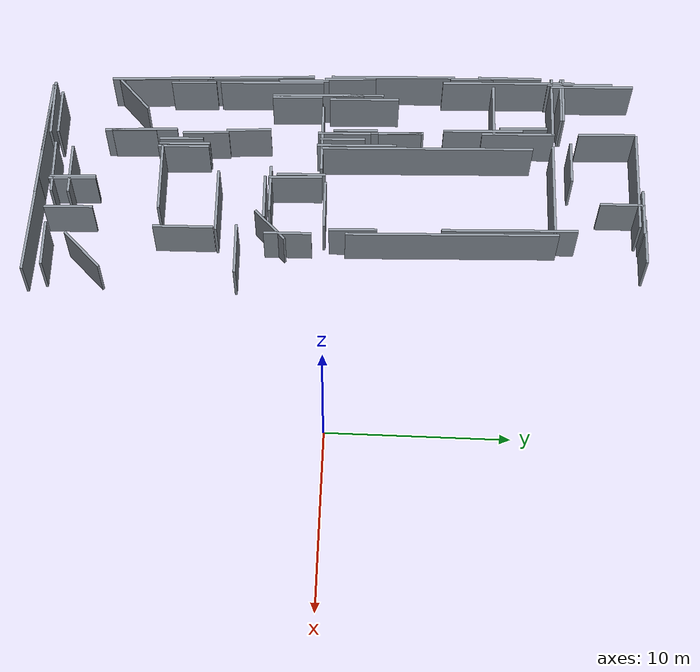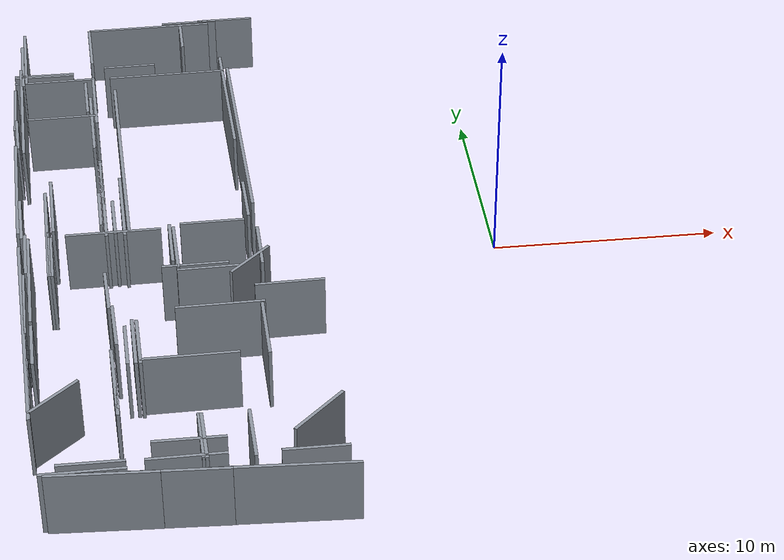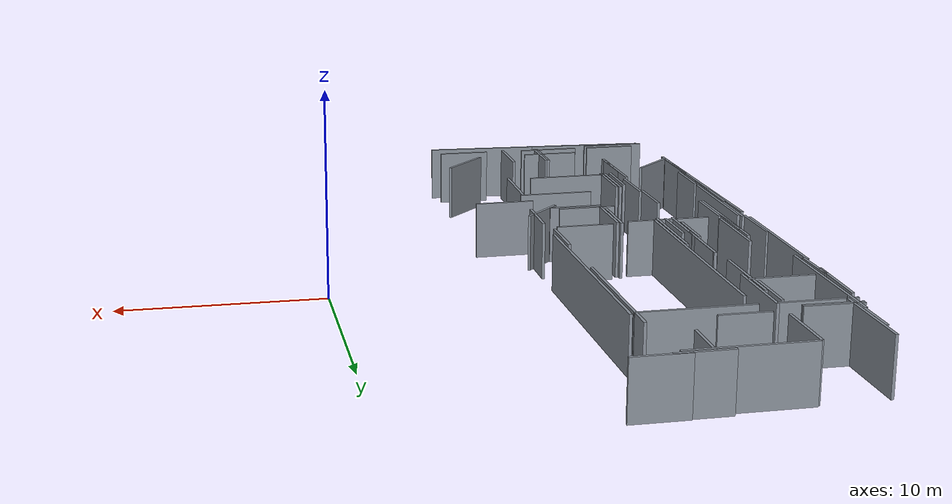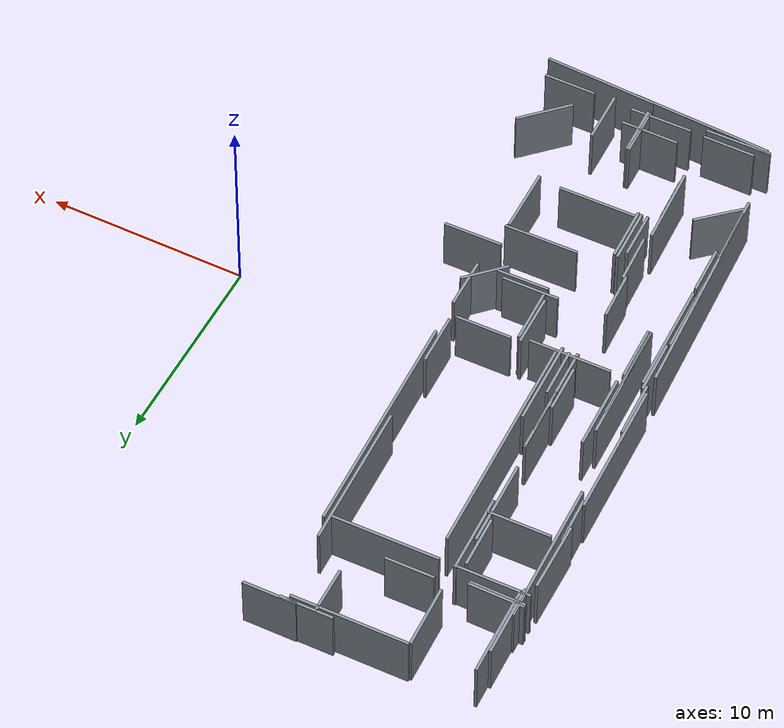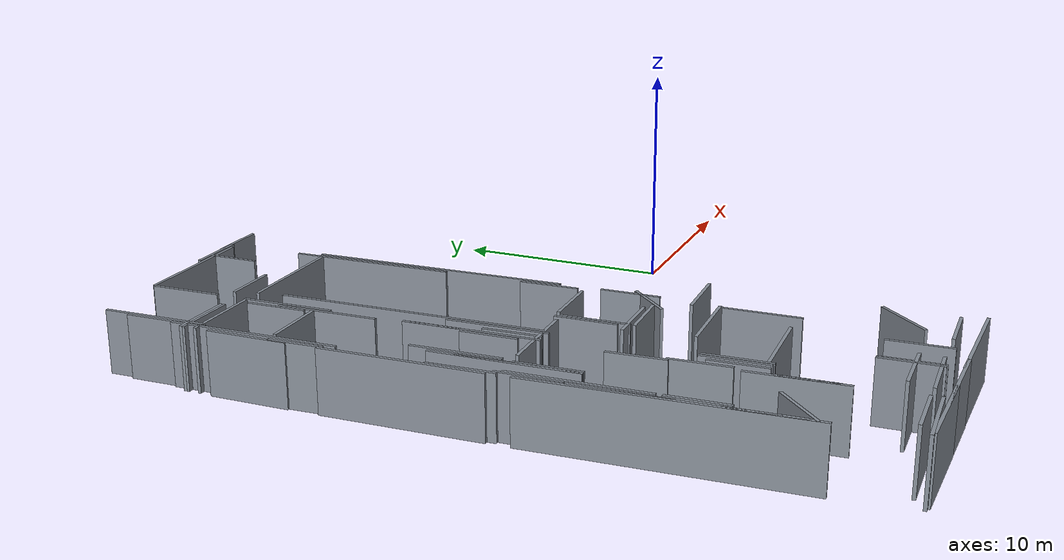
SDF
<sdf version="1.9">
 <world name="qianli_bupt_shahe_public_teaching_floor1_approx">
  <model name="plan_wall_000">
   <static>true</static>
   <pose>-16.260 5.110 1.400 0 0 -1.536911</pose>
   <link name="link">
    <collision name="collision"><geometry><box><size>11.807 0.140 2.800</size></box></geometry></collision>
    <visual name="visual">
     <geometry><box><size>11.807 0.140 2.800</size></box></geometry>
     <material><ambient>0.55 0.58 0.62 1</ambient><diffuse>0.55 0.58 0.62 1</diffuse></material>
    </visual>
   </link>
  </model>
  <model name="plan_wall_001">
   <static>true</static>
   <pose>-10.860 6.580 1.400 0 0 -1.536738</pose>
   <link name="link">
    <collision name="collision"><geometry><box><size>11.747 0.140 2.800</size></box></geometry></collision>
    <visual name="visual">
     <geometry><box><size>11.747 0.140 2.800</size></box></geometry>
     <material><ambient>0.55 0.58 0.62 1</ambient><diffuse>0.55 0.58 0.62 1</diffuse></material>
    </visual>
   </link>
  </model>
  <model name="plan_wall_003">
   <static>true</static>
   <pose>-20.440 -7.170 1.400 0 0 -1.518579</pose>
   <link name="link">
    <collision name="collision"><geometry><box><size>11.496 0.140 2.800</size></box></geometry></collision>
    <visual name="visual">
     <geometry><box><size>11.496 0.140 2.800</size></box></geometry>
     <material><ambient>0.55 0.58 0.62 1</ambient><diffuse>0.55 0.58 0.62 1</diffuse></material>
    </visual>
   </link>
  </model>
  <model name="plan_wall_006">
   <static>true</static>
   <pose>-11.230 9.740 1.400 0 0 -1.536144</pose>
   <link name="link">
    <collision name="collision"><geometry><box><size>7.505 0.140 2.800</size></box></geometry></collision>
    <visual name="visual">
     <geometry><box><size>7.505 0.140 2.800</size></box></geometry>
     <material><ambient>0.55 0.58 0.62 1</ambient><diffuse>0.55 0.58 0.62 1</diffuse></material>
    </visual>
   </link>
  </model>
  <model name="plan_wall_007">
   <static>true</static>
   <pose>-20.770 9.640 1.400 0 0 -1.535958</pose>
   <link name="link">
    <collision name="collision"><geometry><box><size>7.465 0.140 2.800</size></box></geometry></collision>
    <visual name="visual">
     <geometry><box><size>7.465 0.140 2.800</size></box></geometry>
     <material><ambient>0.55 0.58 0.62 1</ambient><diffuse>0.55 0.58 0.62 1</diffuse></material>
    </visual>
   </link>
  </model>
  <model name="plan_wall_008">
   <static>true</static>
   <pose>-20.900 3.060 1.400 0 0 -1.536622</pose>
   <link name="link">
    <collision name="collision"><geometry><box><size>7.024 0.140 2.800</size></box></geometry></collision>
    <visual name="visual">
     <geometry><box><size>7.024 0.140 2.800</size></box></geometry>
     <material><ambient>0.55 0.58 0.62 1</ambient><diffuse>0.55 0.58 0.62 1</diffuse></material>
    </visual>
   </link>
  </model>
  <model name="plan_wall_011">
   <static>true</static>
   <pose>-19.550 -0.590 1.400 0 0 -1.535779</pose>
   <link name="link">
    <collision name="collision"><geometry><box><size>6.284 0.140 2.800</size></box></geometry></collision>
    <visual name="visual">
     <geometry><box><size>6.284 0.140 2.800</size></box></geometry>
     <material><ambient>0.55 0.58 0.62 1</ambient><diffuse>0.55 0.58 0.62 1</diffuse></material>
    </visual>
   </link>
  </model>
  <model name="plan_wall_013">
   <static>true</static>
   <pose>-20.260 -3.820 1.400 0 0 -1.536680</pose>
   <link name="link">
    <collision name="collision"><geometry><box><size>5.863 0.140 2.800</size></box></geometry></collision>
    <visual name="visual">
     <geometry><box><size>5.863 0.140 2.800</size></box></geometry>
     <material><ambient>0.55 0.58 0.62 1</ambient><diffuse>0.55 0.58 0.62 1</diffuse></material>
    </visual>
   </link>
  </model>
  <model name="plan_wall_015">
   <static>true</static>
   <pose>-14.670 16.840 1.400 0 0 0.017180</pose>
   <link name="link">
    <collision name="collision"><geometry><box><size>5.821 0.140 2.800</size></box></geometry></collision>
    <visual name="visual">
     <geometry><box><size>5.821 0.140 2.800</size></box></geometry>
     <material><ambient>0.55 0.58 0.62 1</ambient><diffuse>0.55 0.58 0.62 1</diffuse></material>
    </visual>
   </link>
  </model>
  <model name="plan_wall_016">
   <static>true</static>
   <pose>-10.660 -16.630 1.400 0 0 -0.048912</pose>
   <link name="link">
    <collision name="collision"><geometry><box><size>5.727 0.140 2.800</size></box></geometry></collision>
    <visual name="visual">
     <geometry><box><size>5.727 0.140 2.800</size></box></geometry>
     <material><ambient>0.55 0.58 0.62 1</ambient><diffuse>0.55 0.58 0.62 1</diffuse></material>
    </visual>
   </link>
  </model>
  <model name="plan_wall_019">
   <static>true</static>
   <pose>-13.960 12.180 1.400 0 0 0.018380</pose>
   <link name="link">
    <collision name="collision"><geometry><box><size>5.441 0.140 2.800</size></box></geometry></collision>
    <visual name="visual">
     <geometry><box><size>5.441 0.140 2.800</size></box></geometry>
     <material><ambient>0.55 0.58 0.62 1</ambient><diffuse>0.55 0.58 0.62 1</diffuse></material>
    </visual>
   </link>
  </model>
  <model name="plan_wall_023">
   <static>true</static>
   <pose>-15.260 -16.420 1.400 0 0 -0.048833</pose>
   <link name="link">
    <collision name="collision"><geometry><box><size>5.326 0.140 2.800</size></box></geometry></collision>
    <visual name="visual">
     <geometry><box><size>5.326 0.140 2.800</size></box></geometry>
     <material><ambient>0.55 0.58 0.62 1</ambient><diffuse>0.55 0.58 0.62 1</diffuse></material>
    </visual>
   </link>
  </model>
  <model name="plan_wall_027">
   <static>true</static>
   <pose>-19.510 -1.150 1.400 0 0 -1.535927</pose>
   <link name="link">
    <collision name="collision"><geometry><box><size>5.163 0.140 2.800</size></box></geometry></collision>
    <visual name="visual">
     <geometry><box><size>5.163 0.140 2.800</size></box></geometry>
     <material><ambient>0.55 0.58 0.62 1</ambient><diffuse>0.55 0.58 0.62 1</diffuse></material>
    </visual>
   </link>
  </model>
  <model name="plan_wall_033">
   <static>true</static>
   <pose>-20.700 14.370 1.400 0 0 -1.536327</pose>
   <link name="link">
    <collision name="collision"><geometry><box><size>4.643 0.140 2.800</size></box></geometry></collision>
    <visual name="visual">
     <geometry><box><size>4.643 0.140 2.800</size></box></geometry>
     <material><ambient>0.55 0.58 0.62 1</ambient><diffuse>0.55 0.58 0.62 1</diffuse></material>
    </visual>
   </link>
  </model>
  <model name="plan_wall_043">
   <static>true</static>
   <pose>-17.540 8.220 1.400 0 0 -1.534937</pose>
   <link name="link">
    <collision name="collision"><geometry><box><size>4.463 0.140 2.800</size></box></geometry></collision>
    <visual name="visual">
     <geometry><box><size>4.463 0.140 2.800</size></box></geometry>
     <material><ambient>0.55 0.58 0.62 1</ambient><diffuse>0.55 0.58 0.62 1</diffuse></material>
    </visual>
   </link>
  </model>
  <model name="plan_wall_044">
   <static>true</static>
   <pose>-16.310 1.150 1.400 0 0 -1.539275</pose>
   <link name="link">
    <collision name="collision"><geometry><box><size>4.442 0.140 2.800</size></box></geometry></collision>
    <visual name="visual">
     <geometry><box><size>4.442 0.140 2.800</size></box></geometry>
     <material><ambient>0.55 0.58 0.62 1</ambient><diffuse>0.55 0.58 0.62 1</diffuse></material>
    </visual>
   </link>
  </model>
  <model name="plan_wall_048">
   <static>true</static>
   <pose>-17.430 -16.320 1.400 0 0 -0.050648</pose>
   <link name="link">
    <collision name="collision"><geometry><box><size>4.346 0.140 2.800</size></box></geometry></collision>
    <visual name="visual">
     <geometry><box><size>4.346 0.140 2.800</size></box></geometry>
     <material><ambient>0.55 0.58 0.62 1</ambient><diffuse>0.55 0.58 0.62 1</diffuse></material>
    </visual>
   </link>
  </model>
  <model name="plan_wall_053">
   <static>true</static>
   <pose>-17.410 10.200 1.400 0 0 -1.536663</pose>
   <link name="link">
    <collision name="collision"><geometry><box><size>4.102 0.140 2.800</size></box></geometry></collision>
    <visual name="visual">
     <geometry><box><size>4.102 0.140 2.800</size></box></geometry>
     <material><ambient>0.55 0.58 0.62 1</ambient><diffuse>0.55 0.58 0.62 1</diffuse></material>
    </visual>
   </link>
  </model>
  <model name="plan_wall_054">
   <static>true</static>
   <pose>-16.740 -0.800 1.400 0 0 0.014705</pose>
   <link name="link">
    <collision name="collision"><geometry><box><size>4.080 0.140 2.800</size></box></geometry></collision>
    <visual name="visual">
     <geometry><box><size>4.080 0.140 2.800</size></box></geometry>
     <material><ambient>0.55 0.58 0.62 1</ambient><diffuse>0.55 0.58 0.62 1</diffuse></material>
    </visual>
   </link>
  </model>
  <model name="plan_wall_055">
   <static>true</static>
   <pose>-16.860 -11.000 1.400 0 0 -1.521575</pose>
   <link name="link">
    <collision name="collision"><geometry><box><size>4.065 0.140 2.800</size></box></geometry></collision>
    <visual name="visual">
     <geometry><box><size>4.065 0.140 2.800</size></box></geometry>
     <material><ambient>0.55 0.58 0.62 1</ambient><diffuse>0.55 0.58 0.62 1</diffuse></material>
    </visual>
   </link>
  </model>
  <model name="plan_wall_057">
   <static>true</static>
   <pose>-20.450 -5.490 1.400 0 0 -1.536157</pose>
   <link name="link">
    <collision name="collision"><geometry><box><size>4.042 0.140 2.800</size></box></geometry></collision>
    <visual name="visual">
     <geometry><box><size>4.042 0.140 2.800</size></box></geometry>
     <material><ambient>0.55 0.58 0.62 1</ambient><diffuse>0.55 0.58 0.62 1</diffuse></material>
    </visual>
   </link>
  </model>
  <model name="plan_wall_059">
   <static>true</static>
   <pose>-13.870 -9.680 1.400 0 0 0.015074</pose>
   <link name="link">
    <collision name="collision"><geometry><box><size>3.980 0.140 2.800</size></box></geometry></collision>
    <visual name="visual">
     <geometry><box><size>3.980 0.140 2.800</size></box></geometry>
     <material><ambient>0.55 0.58 0.62 1</ambient><diffuse>0.55 0.58 0.62 1</diffuse></material>
    </visual>
   </link>
  </model>
  <model name="plan_wall_060">
   <static>true</static>
   <pose>-19.350 1.480 1.400 0 0 -1.534914</pose>
   <link name="link">
    <collision name="collision"><geometry><box><size>3.903 0.140 2.800</size></box></geometry></collision>
    <visual name="visual">
     <geometry><box><size>3.903 0.140 2.800</size></box></geometry>
     <material><ambient>0.55 0.58 0.62 1</ambient><diffuse>0.55 0.58 0.62 1</diffuse></material>
    </visual>
   </link>
  </model>
  <model name="plan_wall_066">
   <static>true</static>
   <pose>-12.490 -6.440 1.400 0 0 0.016215</pose>
   <link name="link">
    <collision name="collision"><geometry><box><size>3.700 0.140 2.800</size></box></geometry></collision>
    <visual name="visual">
     <geometry><box><size>3.700 0.140 2.800</size></box></geometry>
     <material><ambient>0.55 0.58 0.62 1</ambient><diffuse>0.55 0.58 0.62 1</diffuse></material>
    </visual>
   </link>
  </model>
  <model name="plan_wall_067">
   <static>true</static>
   <pose>-20.820 13.690 1.400 0 0 -1.538199</pose>
   <link name="link">
    <collision name="collision"><geometry><box><size>3.682 0.140 2.800</size></box></geometry></collision>
    <visual name="visual">
     <geometry><box><size>3.682 0.140 2.800</size></box></geometry>
     <material><ambient>0.55 0.58 0.62 1</ambient><diffuse>0.55 0.58 0.62 1</diffuse></material>
    </visual>
   </link>
  </model>
  <model name="plan_wall_068">
   <static>true</static>
   <pose>-19.310 12.100 1.400 0 0 0.016392</pose>
   <link name="link">
    <collision name="collision"><geometry><box><size>3.660 0.140 2.800</size></box></geometry></collision>
    <visual name="visual">
     <geometry><box><size>3.660 0.140 2.800</size></box></geometry>
     <material><ambient>0.55 0.58 0.62 1</ambient><diffuse>0.55 0.58 0.62 1</diffuse></material>
    </visual>
   </link>
  </model>
  <model name="plan_wall_071">
   <static>true</static>
   <pose>-21.090 9.700 1.400 0 0 -1.554038</pose>
   <link name="link">
    <collision name="collision"><geometry><box><size>3.581 0.140 2.800</size></box></geometry></collision>
    <visual name="visual">
     <geometry><box><size>3.581 0.140 2.800</size></box></geometry>
     <material><ambient>0.55 0.58 0.62 1</ambient><diffuse>0.55 0.58 0.62 1</diffuse></material>
    </visual>
   </link>
  </model>
  <model name="plan_wall_080">
   <static>true</static>
   <pose>-17.180 3.130 1.400 0 0 -1.536327</pose>
   <link name="link">
    <collision name="collision"><geometry><box><size>3.482 0.140 2.800</size></box></geometry></collision>
    <visual name="visual">
     <geometry><box><size>3.482 0.140 2.800</size></box></geometry>
     <material><ambient>0.55 0.58 0.62 1</ambient><diffuse>0.55 0.58 0.62 1</diffuse></material>
    </visual>
   </link>
  </model>
  <model name="plan_wall_086">
   <static>true</static>
   <pose>-10.750 -8.200 1.400 0 0 -1.552834</pose>
   <link name="link">
    <collision name="collision"><geometry><box><size>3.341 0.140 2.800</size></box></geometry></collision>
    <visual name="visual">
     <geometry><box><size>3.341 0.140 2.800</size></box></geometry>
     <material><ambient>0.55 0.58 0.62 1</ambient><diffuse>0.55 0.58 0.62 1</diffuse></material>
    </visual>
   </link>
  </model>
  <model name="plan_wall_090">
   <static>true</static>
   <pose>-18.130 -16.110 1.400 0 0 0.012121</pose>
   <link name="link">
    <collision name="collision"><geometry><box><size>3.300 0.140 2.800</size></box></geometry></collision>
    <visual name="visual">
     <geometry><box><size>3.300 0.140 2.800</size></box></geometry>
     <material><ambient>0.55 0.58 0.62 1</ambient><diffuse>0.55 0.58 0.62 1</diffuse></material>
    </visual>
   </link>
  </model>
  <model name="plan_wall_098">
   <static>true</static>
   <pose>-17.560 15.160 1.400 0 0 -1.533078</pose>
   <link name="link">
    <collision name="collision"><geometry><box><size>3.182 0.140 2.800</size></box></geometry></collision>
    <visual name="visual">
     <geometry><box><size>3.182 0.140 2.800</size></box></geometry>
     <material><ambient>0.55 0.58 0.62 1</ambient><diffuse>0.55 0.58 0.62 1</diffuse></material>
    </visual>
   </link>
  </model>
  <model name="plan_wall_104">
   <static>true</static>
   <pose>-18.940 8.800 1.400 0 0 0.019228</pose>
   <link name="link">
    <collision name="collision"><geometry><box><size>3.121 0.140 2.800</size></box></geometry></collision>
    <visual name="visual">
     <geometry><box><size>3.121 0.140 2.800</size></box></geometry>
     <material><ambient>0.55 0.58 0.62 1</ambient><diffuse>0.55 0.58 0.62 1</diffuse></material>
    </visual>
   </link>
  </model>
  <model name="plan_wall_106">
   <static>true</static>
   <pose>-14.280 -15.690 1.400 0 0 0.012820</pose>
   <link name="link">
    <collision name="collision"><geometry><box><size>3.120 0.140 2.800</size></box></geometry></collision>
    <visual name="visual">
     <geometry><box><size>3.120 0.140 2.800</size></box></geometry>
     <material><ambient>0.55 0.58 0.62 1</ambient><diffuse>0.55 0.58 0.62 1</diffuse></material>
    </visual>
   </link>
  </model>
  <model name="plan_wall_109">
   <static>true</static>
   <pose>-20.220 -10.670 1.400 0 0 -1.518213</pose>
   <link name="link">
    <collision name="collision"><geometry><box><size>3.044 0.140 2.800</size></box></geometry></collision>
    <visual name="visual">
     <geometry><box><size>3.044 0.140 2.800</size></box></geometry>
     <material><ambient>0.55 0.58 0.62 1</ambient><diffuse>0.55 0.58 0.62 1</diffuse></material>
    </visual>
   </link>
  </model>
  <model name="plan_wall_113">
   <static>true</static>
   <pose>-14.130 -2.200 1.400 0 0 -1.537252</pose>
   <link name="link">
    <collision name="collision"><geometry><box><size>2.982 0.140 2.800</size></box></geometry></collision>
    <visual name="visual">
     <geometry><box><size>2.982 0.140 2.800</size></box></geometry>
     <material><ambient>0.55 0.58 0.62 1</ambient><diffuse>0.55 0.58 0.62 1</diffuse></material>
    </visual>
   </link>
  </model>
  <model name="plan_wall_117">
   <static>true</static>
   <pose>-17.070 0.430 1.400 0 0 -1.537025</pose>
   <link name="link">
    <collision name="collision"><geometry><box><size>2.962 0.140 2.800</size></box></geometry></collision>
    <visual name="visual">
     <geometry><box><size>2.962 0.140 2.800</size></box></geometry>
     <material><ambient>0.55 0.58 0.62 1</ambient><diffuse>0.55 0.58 0.62 1</diffuse></material>
    </visual>
   </link>
  </model>
  <model name="plan_wall_118">
   <static>true</static>
   <pose>-20.690 0.630 1.400 0 0 -1.522888</pose>
   <link name="link">
    <collision name="collision"><geometry><box><size>2.923 0.140 2.800</size></box></geometry></collision>
    <visual name="visual">
     <geometry><box><size>2.923 0.140 2.800</size></box></geometry>
     <material><ambient>0.55 0.58 0.62 1</ambient><diffuse>0.55 0.58 0.62 1</diffuse></material>
    </visual>
   </link>
  </model>
  <model name="plan_wall_119">
   <static>true</static>
   <pose>-9.540 -5.240 1.400 0 0 0.020545</pose>
   <link name="link">
    <collision name="collision"><geometry><box><size>2.921 0.140 2.800</size></box></geometry></collision>
    <visual name="visual">
     <geometry><box><size>2.921 0.140 2.800</size></box></geometry>
     <material><ambient>0.55 0.58 0.62 1</ambient><diffuse>0.55 0.58 0.62 1</diffuse></material>
    </visual>
   </link>
  </model>
  <model name="plan_wall_124">
   <static>true</static>
   <pose>-9.120 -13.610 1.400 0 0 0.785398</pose>
   <link name="link">
    <collision name="collision"><geometry><box><size>2.885 0.140 2.800</size></box></geometry></collision>
    <visual name="visual">
     <geometry><box><size>2.885 0.140 2.800</size></box></geometry>
     <material><ambient>0.55 0.58 0.62 1</ambient><diffuse>0.55 0.58 0.62 1</diffuse></material>
    </visual>
   </link>
  </model>
  <model name="plan_wall_127">
   <static>true</static>
   <pose>-14.140 -14.730 1.400 0 0 0.000000</pose>
   <link name="link">
    <collision name="collision"><geometry><box><size>2.880 0.140 2.800</size></box></geometry></collision>
    <visual name="visual">
     <geometry><box><size>2.880 0.140 2.800</size></box></geometry>
     <material><ambient>0.55 0.58 0.62 1</ambient><diffuse>0.55 0.58 0.62 1</diffuse></material>
    </visual>
   </link>
  </model>
  <model name="plan_wall_128">
   <static>true</static>
   <pose>-16.050 -8.500 1.400 0 0 -1.535846</pose>
   <link name="link">
    <collision name="collision"><geometry><box><size>2.862 0.140 2.800</size></box></geometry></collision>
    <visual name="visual">
     <geometry><box><size>2.862 0.140 2.800</size></box></geometry>
     <material><ambient>0.55 0.58 0.62 1</ambient><diffuse>0.55 0.58 0.62 1</diffuse></material>
    </visual>
   </link>
  </model>
  <model name="plan_wall_131">
   <static>true</static>
   <pose>-15.870 -8.550 1.400 0 0 -1.535600</pose>
   <link name="link">
    <collision name="collision"><geometry><box><size>2.842 0.140 2.800</size></box></geometry></collision>
    <visual name="visual">
     <geometry><box><size>2.842 0.140 2.800</size></box></geometry>
     <material><ambient>0.55 0.58 0.62 1</ambient><diffuse>0.55 0.58 0.62 1</diffuse></material>
    </visual>
   </link>
  </model>
  <model name="plan_wall_132">
   <static>true</static>
   <pose>-19.350 -2.310 1.400 0 0 -1.535600</pose>
   <link name="link">
    <collision name="collision"><geometry><box><size>2.842 0.140 2.800</size></box></geometry></collision>
    <visual name="visual">
     <geometry><box><size>2.842 0.140 2.800</size></box></geometry>
     <material><ambient>0.55 0.58 0.62 1</ambient><diffuse>0.55 0.58 0.62 1</diffuse></material>
    </visual>
   </link>
  </model>
  <model name="plan_wall_134">
   <static>true</static>
   <pose>-13.370 -3.550 1.400 0 0 0.014183</pose>
   <link name="link">
    <collision name="collision"><geometry><box><size>2.820 0.140 2.800</size></box></geometry></collision>
    <visual name="visual">
     <geometry><box><size>2.820 0.140 2.800</size></box></geometry>
     <material><ambient>0.55 0.58 0.62 1</ambient><diffuse>0.55 0.58 0.62 1</diffuse></material>
    </visual>
   </link>
  </model>
  <model name="plan_wall_138">
   <static>true</static>
   <pose>-20.450 -1.990 1.400 0 0 -1.535097</pose>
   <link name="link">
    <collision name="collision"><geometry><box><size>2.802 0.140 2.800</size></box></geometry></collision>
    <visual name="visual">
     <geometry><box><size>2.802 0.140 2.800</size></box></geometry>
     <material><ambient>0.55 0.58 0.62 1</ambient><diffuse>0.55 0.58 0.62 1</diffuse></material>
    </visual>
   </link>
  </model>
  <model name="plan_wall_142">
   <static>true</static>
   <pose>-12.490 -0.490 1.400 0 0 0.014387</pose>
   <link name="link">
    <collision name="collision"><geometry><box><size>2.780 0.140 2.800</size></box></geometry></collision>
    <visual name="visual">
     <geometry><box><size>2.780 0.140 2.800</size></box></geometry>
     <material><ambient>0.55 0.58 0.62 1</ambient><diffuse>0.55 0.58 0.62 1</diffuse></material>
    </visual>
   </link>
  </model>
  <model name="plan_wall_145">
   <static>true</static>
   <pose>-19.780 12.730 1.400 0 0 0.000000</pose>
   <link name="link">
    <collision name="collision"><geometry><box><size>2.760 0.140 2.800</size></box></geometry></collision>
    <visual name="visual">
     <geometry><box><size>2.760 0.140 2.800</size></box></geometry>
     <material><ambient>0.55 0.58 0.62 1</ambient><diffuse>0.55 0.58 0.62 1</diffuse></material>
    </visual>
   </link>
  </model>
  <model name="plan_wall_146">
   <static>true</static>
   <pose>-19.780 12.610 1.400 0 0 0.000000</pose>
   <link name="link">
    <collision name="collision"><geometry><box><size>2.760 0.140 2.800</size></box></geometry></collision>
    <visual name="visual">
     <geometry><box><size>2.760 0.140 2.800</size></box></geometry>
     <material><ambient>0.55 0.58 0.62 1</ambient><diffuse>0.55 0.58 0.62 1</diffuse></material>
    </visual>
   </link>
  </model>
  <model name="plan_wall_148">
   <static>true</static>
   <pose>-14.310 -1.870 1.400 0 0 -1.548741</pose>
   <link name="link">
    <collision name="collision"><geometry><box><size>2.721 0.140 2.800</size></box></geometry></collision>
    <visual name="visual">
     <geometry><box><size>2.721 0.140 2.800</size></box></geometry>
     <material><ambient>0.55 0.58 0.62 1</ambient><diffuse>0.55 0.58 0.62 1</diffuse></material>
    </visual>
   </link>
  </model>
  <model name="plan_wall_149">
   <static>true</static>
   <pose>-11.740 -14.620 1.400 0 0 -1.541175</pose>
   <link name="link">
    <collision name="collision"><geometry><box><size>2.701 0.140 2.800</size></box></geometry></collision>
    <visual name="visual">
     <geometry><box><size>2.701 0.140 2.800</size></box></geometry>
     <material><ambient>0.55 0.58 0.62 1</ambient><diffuse>0.55 0.58 0.62 1</diffuse></material>
    </visual>
   </link>
  </model>
  <model name="plan_wall_152">
   <static>true</static>
   <pose>-17.790 10.490 1.400 0 0 -1.533500</pose>
   <link name="link">
    <collision name="collision"><geometry><box><size>2.682 0.140 2.800</size></box></geometry></collision>
    <visual name="visual">
     <geometry><box><size>2.682 0.140 2.800</size></box></geometry>
     <material><ambient>0.55 0.58 0.62 1</ambient><diffuse>0.55 0.58 0.62 1</diffuse></material>
    </visual>
   </link>
  </model>
  <model name="plan_wall_155">
   <static>true</static>
   <pose>-10.910 17.190 1.400 0 0 0.015036</pose>
   <link name="link">
    <collision name="collision"><geometry><box><size>2.660 0.140 2.800</size></box></geometry></collision>
    <visual name="visual">
     <geometry><box><size>2.660 0.140 2.800</size></box></geometry>
     <material><ambient>0.55 0.58 0.62 1</ambient><diffuse>0.55 0.58 0.62 1</diffuse></material>
    </visual>
   </link>
  </model>
  <model name="plan_wall_160">
   <static>true</static>
   <pose>-10.940 1.130 1.400 0 0 -1.540503</pose>
   <link name="link">
    <collision name="collision"><geometry><box><size>2.641 0.140 2.800</size></box></geometry></collision>
    <visual name="visual">
     <geometry><box><size>2.641 0.140 2.800</size></box></geometry>
     <material><ambient>0.55 0.58 0.62 1</ambient><diffuse>0.55 0.58 0.62 1</diffuse></material>
    </visual>
   </link>
  </model>
  <model name="plan_wall_162">
   <static>true</static>
   <pose>-12.700 17.110 1.400 0 0 0.015150</pose>
   <link name="link">
    <collision name="collision"><geometry><box><size>2.640 0.140 2.800</size></box></geometry></collision>
    <visual name="visual">
     <geometry><box><size>2.640 0.140 2.800</size></box></geometry>
     <material><ambient>0.55 0.58 0.62 1</ambient><diffuse>0.55 0.58 0.62 1</diffuse></material>
    </visual>
   </link>
  </model>
  <model name="plan_wall_163">
   <static>true</static>
   <pose>-10.580 -2.450 1.400 0 0 -1.555646</pose>
   <link name="link">
    <collision name="collision"><geometry><box><size>2.640 0.140 2.800</size></box></geometry></collision>
    <visual name="visual">
     <geometry><box><size>2.640 0.140 2.800</size></box></geometry>
     <material><ambient>0.55 0.58 0.62 1</ambient><diffuse>0.55 0.58 0.62 1</diffuse></material>
    </visual>
   </link>
  </model>
  <model name="plan_wall_165">
   <static>true</static>
   <pose>-13.570 -14.580 1.400 0 0 -1.532647</pose>
   <link name="link">
    <collision name="collision"><geometry><box><size>2.622 0.140 2.800</size></box></geometry></collision>
    <visual name="visual">
     <geometry><box><size>2.622 0.140 2.800</size></box></geometry>
     <material><ambient>0.55 0.58 0.62 1</ambient><diffuse>0.55 0.58 0.62 1</diffuse></material>
    </visual>
   </link>
  </model>
  <model name="plan_wall_167">
   <static>true</static>
   <pose>-17.830 -15.670 1.400 0 0 0.000000</pose>
   <link name="link">
    <collision name="collision"><geometry><box><size>2.620 0.140 2.800</size></box></geometry></collision>
    <visual name="visual">
     <geometry><box><size>2.620 0.140 2.800</size></box></geometry>
     <material><ambient>0.55 0.58 0.62 1</ambient><diffuse>0.55 0.58 0.62 1</diffuse></material>
    </visual>
   </link>
  </model>
  <model name="plan_wall_168">
   <static>true</static>
   <pose>-19.220 -11.620 1.400 0 0 0.747578</pose>
   <link name="link">
    <collision name="collision"><geometry><box><size>2.618 0.140 2.800</size></box></geometry></collision>
    <visual name="visual">
     <geometry><box><size>2.618 0.140 2.800</size></box></geometry>
     <material><ambient>0.55 0.58 0.62 1</ambient><diffuse>0.55 0.58 0.62 1</diffuse></material>
    </visual>
   </link>
  </model>
  <model name="plan_wall_170">
   <static>true</static>
   <pose>-12.840 -3.840 1.400 0 0 0.023073</pose>
   <link name="link">
    <collision name="collision"><geometry><box><size>2.601 0.140 2.800</size></box></geometry></collision>
    <visual name="visual">
     <geometry><box><size>2.601 0.140 2.800</size></box></geometry>
     <material><ambient>0.55 0.58 0.62 1</ambient><diffuse>0.55 0.58 0.62 1</diffuse></material>
    </visual>
   </link>
  </model>
  <model name="plan_wall_172">
   <static>true</static>
   <pose>-9.440 -15.750 1.400 0 0 0.000000</pose>
   <link name="link">
    <collision name="collision"><geometry><box><size>2.600 0.140 2.800</size></box></geometry></collision>
    <visual name="visual">
     <geometry><box><size>2.600 0.140 2.800</size></box></geometry>
     <material><ambient>0.55 0.58 0.62 1</ambient><diffuse>0.55 0.58 0.62 1</diffuse></material>
    </visual>
   </link>
  </model>
  <model name="plan_wall_173">
   <static>true</static>
   <pose>-16.810 -7.360 1.400 0 0 -1.516586</pose>
   <link name="link">
    <collision name="collision"><geometry><box><size>2.584 0.140 2.800</size></box></geometry></collision>
    <visual name="visual">
     <geometry><box><size>2.584 0.140 2.800</size></box></geometry>
     <material><ambient>0.55 0.58 0.62 1</ambient><diffuse>0.55 0.58 0.62 1</diffuse></material>
    </visual>
   </link>
  </model>
  <model name="plan_wall_174">
   <static>true</static>
   <pose>-13.680 -14.560 1.400 0 0 -1.539799</pose>
   <link name="link">
    <collision name="collision"><geometry><box><size>2.581 0.140 2.800</size></box></geometry></collision>
    <visual name="visual">
     <geometry><box><size>2.581 0.140 2.800</size></box></geometry>
     <material><ambient>0.55 0.58 0.62 1</ambient><diffuse>0.55 0.58 0.62 1</diffuse></material>
    </visual>
   </link>
  </model>
  <model name="plan_wall_183">
   <static>true</static>
   <pose>-20.090 -8.260 1.400 0 0 -1.531447</pose>
   <link name="link">
    <collision name="collision"><geometry><box><size>2.542 0.140 2.800</size></box></geometry></collision>
    <visual name="visual">
     <geometry><box><size>2.542 0.140 2.800</size></box></geometry>
     <material><ambient>0.55 0.58 0.62 1</ambient><diffuse>0.55 0.58 0.62 1</diffuse></material>
    </visual>
   </link>
  </model>
  <model name="plan_wall_184">
   <static>true</static>
   <pose>-16.690 0.320 1.400 0 0 -1.531447</pose>
   <link name="link">
    <collision name="collision"><geometry><box><size>2.542 0.140 2.800</size></box></geometry></collision>
    <visual name="visual">
     <geometry><box><size>2.542 0.140 2.800</size></box></geometry>
     <material><ambient>0.55 0.58 0.62 1</ambient><diffuse>0.55 0.58 0.62 1</diffuse></material>
    </visual>
   </link>
  </model>
  <model name="plan_wall_191">
   <static>true</static>
   <pose>-17.070 -4.960 1.400 0 0 -1.514855</pose>
   <link name="link">
    <collision name="collision"><geometry><box><size>2.504 0.140 2.800</size></box></geometry></collision>
    <visual name="visual">
     <geometry><box><size>2.504 0.140 2.800</size></box></geometry>
     <material><ambient>0.55 0.58 0.62 1</ambient><diffuse>0.55 0.58 0.62 1</diffuse></material>
    </visual>
   </link>
  </model>
  <model name="plan_wall_199">
   <static>true</static>
   <pose>-16.820 -11.390 1.400 0 0 -1.522447</pose>
   <link name="link">
    <collision name="collision"><geometry><box><size>2.483 0.140 2.800</size></box></geometry></collision>
    <visual name="visual">
     <geometry><box><size>2.483 0.140 2.800</size></box></geometry>
     <material><ambient>0.55 0.58 0.62 1</ambient><diffuse>0.55 0.58 0.62 1</diffuse></material>
    </visual>
   </link>
  </model>
  <model name="plan_wall_200">
   <static>true</static>
   <pose>-17.280 1.050 1.400 0 0 -1.538549</pose>
   <link name="link">
    <collision name="collision"><geometry><box><size>2.481 0.140 2.800</size></box></geometry></collision>
    <visual name="visual">
     <geometry><box><size>2.481 0.140 2.800</size></box></geometry>
     <material><ambient>0.55 0.58 0.62 1</ambient><diffuse>0.55 0.58 0.62 1</diffuse></material>
    </visual>
   </link>
  </model>
  <model name="plan_wall_204">
   <static>true</static>
   <pose>-16.360 -8.700 1.400 0 0 -1.538287</pose>
   <link name="link">
    <collision name="collision"><geometry><box><size>2.461 0.140 2.800</size></box></geometry></collision>
    <visual name="visual">
     <geometry><box><size>2.461 0.140 2.800</size></box></geometry>
     <material><ambient>0.55 0.58 0.62 1</ambient><diffuse>0.55 0.58 0.62 1</diffuse></material>
    </visual>
   </link>
  </model>
  <model name="plan_wall_209">
   <static>true</static>
   <pose>-20.960 7.550 1.400 0 0 -1.521656</pose>
   <link name="link">
    <collision name="collision"><geometry><box><size>2.443 0.140 2.800</size></box></geometry></collision>
    <visual name="visual">
     <geometry><box><size>2.443 0.140 2.800</size></box></geometry>
     <material><ambient>0.55 0.58 0.62 1</ambient><diffuse>0.55 0.58 0.62 1</diffuse></material>
    </visual>
   </link>
  </model>
  <model name="plan_wall_212">
   <static>true</static>
   <pose>-17.180 3.540 1.400 0 0 -1.537751</pose>
   <link name="link">
    <collision name="collision"><geometry><box><size>2.421 0.140 2.800</size></box></geometry></collision>
    <visual name="visual">
     <geometry><box><size>2.421 0.140 2.800</size></box></geometry>
     <material><ambient>0.55 0.58 0.62 1</ambient><diffuse>0.55 0.58 0.62 1</diffuse></material>
    </visual>
   </link>
  </model>
  <model name="plan_wall_214">
   <static>true</static>
   <pose>-15.730 13.150 1.400 0 0 0.016527</pose>
   <link name="link">
    <collision name="collision"><geometry><box><size>2.420 0.140 2.800</size></box></geometry></collision>
    <visual name="visual">
     <geometry><box><size>2.420 0.140 2.800</size></box></geometry>
     <material><ambient>0.55 0.58 0.62 1</ambient><diffuse>0.55 0.58 0.62 1</diffuse></material>
    </visual>
   </link>
  </model>
  <model name="plan_wall_216">
   <static>true</static>
   <pose>-13.120 15.920 1.400 0 0 -1.554269</pose>
   <link name="link">
    <collision name="collision"><geometry><box><size>2.420 0.140 2.800</size></box></geometry></collision>
    <visual name="visual">
     <geometry><box><size>2.420 0.140 2.800</size></box></geometry>
     <material><ambient>0.55 0.58 0.62 1</ambient><diffuse>0.55 0.58 0.62 1</diffuse></material>
    </visual>
   </link>
  </model>
  <model name="plan_wall_217">
   <static>true</static>
   <pose>-11.070 -3.440 1.400 0 0 0.785398</pose>
   <link name="link">
    <collision name="collision"><geometry><box><size>2.404 0.140 2.800</size></box></geometry></collision>
    <visual name="visual">
     <geometry><box><size>2.404 0.140 2.800</size></box></geometry>
     <material><ambient>0.55 0.58 0.62 1</ambient><diffuse>0.55 0.58 0.62 1</diffuse></material>
    </visual>
   </link>
  </model>
 </world>
</sdf>
